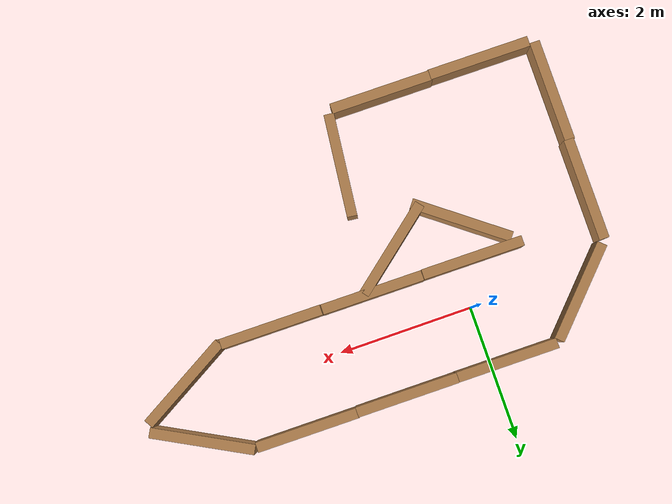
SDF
<?xml version='1.0'?>
<sdf version='1.6'>
  <model name='final_project_zone_1'>
    <link name='Wall_4'>
      <pose frame=''>4.23662 0.529799 -0 0 -0 2.64859</pose>
      <inertial>
        <inertia>
          <ixx>0</ixx>
          <ixy>0</ixy>
          <ixz>0</ixz>
          <iyy>0</iyy>
          <iyz>0</iyz>
          <izz>0</izz>
        </inertia>
        <mass>0</mass>
        <pose frame=''>0 0 0 0 -0 0</pose>
      </inertial>
      <self_collide>0</self_collide>
      <kinematic>0</kinematic>
      <visual name='Wall_4_Visual'>
        <pose frame=''>0 0 0.25 0 -0 0</pose>
        <geometry>
          <box>
            <size>1.51038 0.15 0.5</size>
          </box>
        </geometry>
        <material>
          <script>
            <uri>file://media/materials/scripts/gazebo.material</uri>
            <name>Gazebo/Wood</name>
          </script>
          <ambient>1 1 1 1</ambient>
          <diffuse>1 1 1 1</diffuse>
          <specular>0.2 0.2 0.2 1</specular>
          <emissive>0 0 0 1</emissive>
          <shader type='pixel'>
            <normal_map>__default__</normal_map>
          </shader>
        </material>
        <cast_shadows>1</cast_shadows>
        <transparency>0</transparency>
      </visual>
      <collision name='Wall_4_Collision'>
        <laser_retro>0</laser_retro>
        <max_contacts>10</max_contacts>
        <pose frame=''>0 0 0.25 0 -0 0</pose>
        <geometry>
          <box>
            <size>1.51038 0.15 0.5</size>
          </box>
        </geometry>
        <surface>
          <friction>
            <ode>
              <mu>1</mu>
              <mu2>1</mu2>
              <fdir1>0 0 0</fdir1>
              <slip1>0</slip1>
              <slip2>0</slip2>
            </ode>
            <torsional>
              <coefficient>1</coefficient>
              <patch_radius>0</patch_radius>
              <surface_radius>0</surface_radius>
              <use_patch_radius>1</use_patch_radius>
              <ode>
                <slip>0</slip>
              </ode>
            </torsional>
          </friction>
          <bounce>
            <restitution_coefficient>0</restitution_coefficient>
            <threshold>1e+06</threshold>
          </bounce>
          <contact>
            <collide_without_contact>0</collide_without_contact>
            <collide_without_contact_bitmask>1</collide_without_contact_bitmask>
            <collide_bitmask>1</collide_bitmask>
            <ode>
              <soft_cfm>0</soft_cfm>
              <soft_erp>0.2</soft_erp>
              <kp>1e+13</kp>
              <kd>1</kd>
              <max_vel>0.01</max_vel>
              <min_depth>0</min_depth>
            </ode>
            <bullet>
              <split_impulse>1</split_impulse>
              <split_impulse_penetration_threshold>-0.01</split_impulse_penetration_threshold>
              <soft_cfm>0</soft_cfm>
              <soft_erp>0.2</soft_erp>
              <kp>1e+13</kp>
              <kd>1</kd>
            </bullet>
          </contact>
        </surface>
      </collision>
    </link>
    <link name='Wall_4_clone'>
      <pose frame=''>-0.261199 -1.22161 0 0 -0 2.48633</pose>
      <inertial>
        <inertia>
          <ixx>0</ixx>
          <ixy>0</ixy>
          <ixz>0</ixz>
          <iyy>0</iyy>
          <iyz>0</iyz>
          <izz>0</izz>
        </inertia>
        <mass>0</mass>
        <pose frame=''>0 0 0 0 -0 0</pose>
      </inertial>
      <self_collide>0</self_collide>
      <kinematic>0</kinematic>
      <visual name='Wall_4_Visual'>
        <pose frame=''>0 0 0.25 0 -0 0</pose>
        <geometry>
          <box>
            <size>1.51038 0.15 0.5</size>
          </box>
        </geometry>
        <material>
          <script>
            <uri>file://media/materials/scripts/gazebo.material</uri>
            <name>Gazebo/Wood</name>
          </script>
          <ambient>1 1 1 1</ambient>
          <diffuse>1 1 1 1</diffuse>
          <specular>0.2 0.2 0.2 1</specular>
          <emissive>0 0 0 1</emissive>
          <shader type='pixel'>
            <normal_map>__default__</normal_map>
          </shader>
        </material>
        <cast_shadows>1</cast_shadows>
        <transparency>0</transparency>
      </visual>
      <collision name='Wall_4_Collision'>
        <laser_retro>0</laser_retro>
        <max_contacts>10</max_contacts>
        <pose frame=''>0 0 0.25 0 -0 0</pose>
        <geometry>
          <box>
            <size>1.51038 0.15 0.5</size>
          </box>
        </geometry>
        <surface>
          <friction>
            <ode>
              <mu>1</mu>
              <mu2>1</mu2>
              <fdir1>0 0 0</fdir1>
              <slip1>0</slip1>
              <slip2>0</slip2>
            </ode>
            <torsional>
              <coefficient>1</coefficient>
              <patch_radius>0</patch_radius>
              <surface_radius>0</surface_radius>
              <use_patch_radius>1</use_patch_radius>
              <ode>
                <slip>0</slip>
              </ode>
            </torsional>
          </friction>
          <bounce>
            <restitution_coefficient>0</restitution_coefficient>
            <threshold>1e+06</threshold>
          </bounce>
          <contact>
            <collide_without_contact>0</collide_without_contact>
            <collide_without_contact_bitmask>1</collide_without_contact_bitmask>
            <collide_bitmask>1</collide_bitmask>
            <ode>
              <soft_cfm>0</soft_cfm>
              <soft_erp>0.2</soft_erp>
              <kp>1e+13</kp>
              <kd>1</kd>
              <max_vel>0.01</max_vel>
              <min_depth>0</min_depth>
            </ode>
            <bullet>
              <split_impulse>1</split_impulse>
              <split_impulse_penetration_threshold>-0.01</split_impulse_penetration_threshold>
              <soft_cfm>0</soft_cfm>
              <soft_erp>0.2</soft_erp>
              <kp>1e+13</kp>
              <kd>1</kd>
            </bullet>
          </contact>
        </surface>
      </collision>
    </link>
    <link name='Wall_4_clone_0'>
      <pose frame=''>4.22114 -0.323502 0 0 0 -2.61959</pose>
      <inertial>
        <inertia>
          <ixx>0</ixx>
          <ixy>0</ixy>
          <ixz>0</ixz>
          <iyy>0</iyy>
          <iyz>0</iyz>
          <izz>0</izz>
        </inertia>
        <mass>0</mass>
        <pose frame=''>0 0 0 0 -0 0</pose>
      </inertial>
      <self_collide>0</self_collide>
      <kinematic>0</kinematic>
      <visual name='Wall_4_Visual'>
        <pose frame=''>0 0 0.25 0 -0 0</pose>
        <geometry>
          <box>
            <size>1.51038 0.15 0.5</size>
          </box>
        </geometry>
        <material>
          <script>
            <uri>file://media/materials/scripts/gazebo.material</uri>
            <name>Gazebo/Wood</name>
          </script>
          <ambient>1 1 1 1</ambient>
          <diffuse>1 1 1 1</diffuse>
          <specular>0.2 0.2 0.2 1</specular>
          <emissive>0 0 0 1</emissive>
          <shader type='pixel'>
            <normal_map>__default__</normal_map>
          </shader>
        </material>
        <cast_shadows>1</cast_shadows>
        <transparency>0</transparency>
      </visual>
      <collision name='Wall_4_Collision'>
        <laser_retro>0</laser_retro>
        <max_contacts>10</max_contacts>
        <pose frame=''>0 0 0.25 0 -0 0</pose>
        <geometry>
          <box>
            <size>1.51038 0.15 0.5</size>
          </box>
        </geometry>
        <surface>
          <friction>
            <ode>
              <mu>1</mu>
              <mu2>1</mu2>
              <fdir1>0 0 0</fdir1>
              <slip1>0</slip1>
              <slip2>0</slip2>
            </ode>
            <torsional>
              <coefficient>1</coefficient>
              <patch_radius>0</patch_radius>
              <surface_radius>0</surface_radius>
              <use_patch_radius>1</use_patch_radius>
              <ode>
                <slip>0</slip>
              </ode>
            </torsional>
          </friction>
          <bounce>
            <restitution_coefficient>0</restitution_coefficient>
            <threshold>1e+06</threshold>
          </bounce>
          <contact>
            <collide_without_contact>0</collide_without_contact>
            <collide_without_contact_bitmask>1</collide_without_contact_bitmask>
            <collide_bitmask>1</collide_bitmask>
            <ode>
              <soft_cfm>0</soft_cfm>
              <soft_erp>0.2</soft_erp>
              <kp>1e+13</kp>
              <kd>1</kd>
              <max_vel>0.01</max_vel>
              <min_depth>0</min_depth>
            </ode>
            <bullet>
              <split_impulse>1</split_impulse>
              <split_impulse_penetration_threshold>-0.01</split_impulse_penetration_threshold>
              <soft_cfm>0</soft_cfm>
              <soft_erp>0.2</soft_erp>
              <kp>1e+13</kp>
              <kd>1</kd>
            </bullet>
          </contact>
        </surface>
      </collision>
    </link>
    <link name='Wall_4_clone_0_clone'>
      <pose frame=''>-1.52332 0.300117 0 0 0 -2.33156</pose>
      <inertial>
        <inertia>
          <ixx>0</ixx>
          <ixy>0</ixy>
          <ixz>0</ixz>
          <iyy>0</iyy>
          <iyz>0</iyz>
          <izz>0</izz>
        </inertia>
        <mass>0</mass>
        <pose frame=''>0 0 0 0 -0 0</pose>
      </inertial>
      <self_collide>0</self_collide>
      <kinematic>0</kinematic>
      <visual name='Wall_4_Visual'>
        <pose frame=''>0 0 0.25 0 -0 0</pose>
        <geometry>
          <box>
            <size>1.51038 0.15 0.5</size>
          </box>
        </geometry>
        <material>
          <script>
            <uri>file://media/materials/scripts/gazebo.material</uri>
            <name>Gazebo/Wood</name>
          </script>
          <ambient>1 1 1 1</ambient>
          <diffuse>1 1 1 1</diffuse>
          <specular>0.2 0.2 0.2 1</specular>
          <emissive>0 0 0 1</emissive>
          <shader type='pixel'>
            <normal_map>__default__</normal_map>
          </shader>
        </material>
        <cast_shadows>1</cast_shadows>
        <transparency>0</transparency>
      </visual>
      <collision name='Wall_4_Collision'>
        <laser_retro>0</laser_retro>
        <max_contacts>10</max_contacts>
        <pose frame=''>0 0 0.25 0 -0 0</pose>
        <geometry>
          <box>
            <size>1.51038 0.15 0.5</size>
          </box>
        </geometry>
        <surface>
          <friction>
            <ode>
              <mu>1</mu>
              <mu2>1</mu2>
              <fdir1>0 0 0</fdir1>
              <slip1>0</slip1>
              <slip2>0</slip2>
            </ode>
            <torsional>
              <coefficient>1</coefficient>
              <patch_radius>0</patch_radius>
              <surface_radius>0</surface_radius>
              <use_patch_radius>1</use_patch_radius>
              <ode>
                <slip>0</slip>
              </ode>
            </torsional>
          </friction>
          <bounce>
            <restitution_coefficient>0</restitution_coefficient>
            <threshold>1e+06</threshold>
          </bounce>
          <contact>
            <collide_without_contact>0</collide_without_contact>
            <collide_without_contact_bitmask>1</collide_without_contact_bitmask>
            <collide_bitmask>1</collide_bitmask>
            <ode>
              <soft_cfm>0</soft_cfm>
              <soft_erp>0.2</soft_erp>
              <kp>1e+13</kp>
              <kd>1</kd>
              <max_vel>0.01</max_vel>
              <min_depth>0</min_depth>
            </ode>
            <bullet>
              <split_impulse>1</split_impulse>
              <split_impulse_penetration_threshold>-0.01</split_impulse_penetration_threshold>
              <soft_cfm>0</soft_cfm>
              <soft_erp>0.2</soft_erp>
              <kp>1e+13</kp>
              <kd>1</kd>
            </bullet>
          </contact>
        </surface>
      </collision>
    </link>
    <link name='Wall_4_clone_0_clone_0'>
      <pose frame=''>0.813512 -1.15828 0 0 0 -2.45903</pose>
      <inertial>
        <inertia>
          <ixx>0</ixx>
          <ixy>0</ixy>
          <ixz>0</ixz>
          <iyy>0</iyy>
          <iyz>0</iyz>
          <izz>0</izz>
        </inertia>
        <mass>0</mass>
        <pose frame=''>0 0 0 0 -0 0</pose>
      </inertial>
      <self_collide>0</self_collide>
      <kinematic>0</kinematic>
      <visual name='Wall_4_Visual'>
        <pose frame=''>0 0 0.25 0 -0 0</pose>
        <geometry>
          <box>
            <size>1.51038 0.15 0.5</size>
          </box>
        </geometry>
        <material>
          <script>
            <uri>file://media/materials/scripts/gazebo.material</uri>
            <name>Gazebo/Wood</name>
          </script>
          <ambient>1 1 1 1</ambient>
          <diffuse>1 1 1 1</diffuse>
          <specular>0.2 0.2 0.2 1</specular>
          <emissive>0 0 0 1</emissive>
          <shader type='pixel'>
            <normal_map>__default__</normal_map>
          </shader>
        </material>
        <cast_shadows>1</cast_shadows>
        <transparency>0</transparency>
      </visual>
      <collision name='Wall_4_Collision'>
        <laser_retro>0</laser_retro>
        <max_contacts>10</max_contacts>
        <pose frame=''>0 0 0.25 0 -0 0</pose>
        <geometry>
          <box>
            <size>1.51038 0.15 0.5</size>
          </box>
        </geometry>
        <surface>
          <friction>
            <ode>
              <mu>1</mu>
              <mu2>1</mu2>
              <fdir1>0 0 0</fdir1>
              <slip1>0</slip1>
              <slip2>0</slip2>
            </ode>
            <torsional>
              <coefficient>1</coefficient>
              <patch_radius>0</patch_radius>
              <surface_radius>0</surface_radius>
              <use_patch_radius>1</use_patch_radius>
              <ode>
                <slip>0</slip>
              </ode>
            </torsional>
          </friction>
          <bounce>
            <restitution_coefficient>0</restitution_coefficient>
            <threshold>1e+06</threshold>
          </bounce>
          <contact>
            <collide_without_contact>0</collide_without_contact>
            <collide_without_contact_bitmask>1</collide_without_contact_bitmask>
            <collide_bitmask>1</collide_bitmask>
            <ode>
              <soft_cfm>0</soft_cfm>
              <soft_erp>0.2</soft_erp>
              <kp>1e+13</kp>
              <kd>1</kd>
              <max_vel>0.01</max_vel>
              <min_depth>0</min_depth>
            </ode>
            <bullet>
              <split_impulse>1</split_impulse>
              <split_impulse_penetration_threshold>-0.01</split_impulse_penetration_threshold>
              <soft_cfm>0</soft_cfm>
              <soft_erp>0.2</soft_erp>
              <kp>1e+13</kp>
              <kd>1</kd>
            </bullet>
          </contact>
        </surface>
      </collision>
    </link>
    <link name='Wall_4_clone_1'>
      <pose frame=''>2.7855 0.87105 -0 0 0 -0.004193</pose>
      <inertial>
        <inertia>
          <ixx>0</ixx>
          <ixy>0</ixy>
          <ixz>0</ixz>
          <iyy>0</iyy>
          <iyz>0</iyz>
          <izz>0</izz>
        </inertia>
        <mass>0</mass>
        <pose frame=''>0 0 0 0 -0 0</pose>
      </inertial>
      <self_collide>0</self_collide>
      <kinematic>0</kinematic>
      <visual name='Wall_4_Visual'>
        <pose frame=''>0 0 0.25 0 -0 0</pose>
        <geometry>
          <box>
            <size>1.51038 0.15 0.5</size>
          </box>
        </geometry>
        <material>
          <script>
            <uri>file://media/materials/scripts/gazebo.material</uri>
            <name>Gazebo/Wood</name>
          </script>
          <ambient>1 1 1 1</ambient>
          <diffuse>1 1 1 1</diffuse>
          <specular>0.2 0.2 0.2 1</specular>
          <emissive>0 0 0 1</emissive>
          <shader type='pixel'>
            <normal_map>__default__</normal_map>
          </shader>
        </material>
        <cast_shadows>1</cast_shadows>
        <transparency>0</transparency>
      </visual>
      <collision name='Wall_4_Collision'>
        <laser_retro>0</laser_retro>
        <max_contacts>10</max_contacts>
        <pose frame=''>0 0 0.25 0 -0 0</pose>
        <geometry>
          <box>
            <size>1.51038 0.15 0.5</size>
          </box>
        </geometry>
        <surface>
          <friction>
            <ode>
              <mu>1</mu>
              <mu2>1</mu2>
              <fdir1>0 0 0</fdir1>
              <slip1>0</slip1>
              <slip2>0</slip2>
            </ode>
            <torsional>
              <coefficient>1</coefficient>
              <patch_radius>0</patch_radius>
              <surface_radius>0</surface_radius>
              <use_patch_radius>1</use_patch_radius>
              <ode>
                <slip>0</slip>
              </ode>
            </torsional>
          </friction>
          <bounce>
            <restitution_coefficient>0</restitution_coefficient>
            <threshold>1e+06</threshold>
          </bounce>
          <contact>
            <collide_without_contact>0</collide_without_contact>
            <collide_without_contact_bitmask>1</collide_without_contact_bitmask>
            <collide_bitmask>1</collide_bitmask>
            <ode>
              <soft_cfm>0</soft_cfm>
              <soft_erp>0.2</soft_erp>
              <kp>1e+13</kp>
              <kd>1</kd>
              <max_vel>0.01</max_vel>
              <min_depth>0</min_depth>
            </ode>
            <bullet>
              <split_impulse>1</split_impulse>
              <split_impulse_penetration_threshold>-0.01</split_impulse_penetration_threshold>
              <soft_cfm>0</soft_cfm>
              <soft_erp>0.2</soft_erp>
              <kp>1e+13</kp>
              <kd>1</kd>
            </bullet>
          </contact>
        </surface>
      </collision>
    </link>
    <link name='Wall_4_clone_1_clone'>
      <pose frame=''>2.80341 -0.673816 0 0 0 -0.004193</pose>
      <inertial>
        <inertia>
          <ixx>0</ixx>
          <ixy>0</ixy>
          <ixz>0</ixz>
          <iyy>0</iyy>
          <iyz>0</iyz>
          <izz>0</izz>
        </inertia>
        <mass>0</mass>
        <pose frame=''>0 0 0 0 -0 0</pose>
      </inertial>
      <self_collide>0</self_collide>
      <kinematic>0</kinematic>
      <visual name='Wall_4_Visual'>
        <pose frame=''>0 0 0.25 0 -0 0</pose>
        <geometry>
          <box>
            <size>1.51038 0.15 0.5</size>
          </box>
        </geometry>
        <material>
          <script>
            <uri>file://media/materials/scripts/gazebo.material</uri>
            <name>Gazebo/Wood</name>
          </script>
          <ambient>1 1 1 1</ambient>
          <diffuse>1 1 1 1</diffuse>
          <specular>0.2 0.2 0.2 1</specular>
          <emissive>0 0 0 1</emissive>
          <shader type='pixel'>
            <normal_map>__default__</normal_map>
          </shader>
        </material>
        <cast_shadows>1</cast_shadows>
        <transparency>0</transparency>
      </visual>
      <collision name='Wall_4_Collision'>
        <laser_retro>0</laser_retro>
        <max_contacts>10</max_contacts>
        <pose frame=''>0 0 0.25 0 -0 0</pose>
        <geometry>
          <box>
            <size>1.51038 0.15 0.5</size>
          </box>
        </geometry>
        <surface>
          <friction>
            <ode>
              <mu>1</mu>
              <mu2>1</mu2>
              <fdir1>0 0 0</fdir1>
              <slip1>0</slip1>
              <slip2>0</slip2>
            </ode>
            <torsional>
              <coefficient>1</coefficient>
              <patch_radius>0</patch_radius>
              <surface_radius>0</surface_radius>
              <use_patch_radius>1</use_patch_radius>
              <ode>
                <slip>0</slip>
              </ode>
            </torsional>
          </friction>
          <bounce>
            <restitution_coefficient>0</restitution_coefficient>
            <threshold>1e+06</threshold>
          </bounce>
          <contact>
            <collide_without_contact>0</collide_without_contact>
            <collide_without_contact_bitmask>1</collide_without_contact_bitmask>
            <collide_bitmask>1</collide_bitmask>
            <ode>
              <soft_cfm>0</soft_cfm>
              <soft_erp>0.2</soft_erp>
              <kp>1e+13</kp>
              <kd>1</kd>
              <max_vel>0.01</max_vel>
              <min_depth>0</min_depth>
            </ode>
            <bullet>
              <split_impulse>1</split_impulse>
              <split_impulse_penetration_threshold>-0.01</split_impulse_penetration_threshold>
              <soft_cfm>0</soft_cfm>
              <soft_erp>0.2</soft_erp>
              <kp>1e+13</kp>
              <kd>1</kd>
            </bullet>
          </contact>
        </surface>
      </collision>
    </link>
    <link name='Wall_4_clone_1_clone_0'>
      <pose frame=''>1.28882 0.869383 -0 0 0 -0.004193</pose>
      <inertial>
        <inertia>
          <ixx>0</ixx>
          <ixy>0</ixy>
          <ixz>0</ixz>
          <iyy>0</iyy>
          <iyz>0</iyz>
          <izz>0</izz>
        </inertia>
        <mass>0</mass>
        <pose frame=''>0 0 0 0 -0 0</pose>
      </inertial>
      <self_collide>0</self_collide>
      <kinematic>0</kinematic>
      <visual name='Wall_4_Visual'>
        <pose frame=''>0 0 0.25 0 -0 0</pose>
        <geometry>
          <box>
            <size>1.51038 0.15 0.5</size>
          </box>
        </geometry>
        <material>
          <script>
            <uri>file://media/materials/scripts/gazebo.material</uri>
            <name>Gazebo/Wood</name>
          </script>
          <ambient>1 1 1 1</ambient>
          <diffuse>1 1 1 1</diffuse>
          <specular>0.2 0.2 0.2 1</specular>
          <emissive>0 0 0 1</emissive>
          <shader type='pixel'>
            <normal_map>__default__</normal_map>
          </shader>
        </material>
        <cast_shadows>1</cast_shadows>
        <transparency>0</transparency>
      </visual>
      <collision name='Wall_4_Collision'>
        <laser_retro>0</laser_retro>
        <max_contacts>10</max_contacts>
        <pose frame=''>0 0 0.25 0 -0 0</pose>
        <geometry>
          <box>
            <size>1.51038 0.15 0.5</size>
          </box>
        </geometry>
        <surface>
          <friction>
            <ode>
              <mu>1</mu>
              <mu2>1</mu2>
              <fdir1>0 0 0</fdir1>
              <slip1>0</slip1>
              <slip2>0</slip2>
            </ode>
            <torsional>
              <coefficient>1</coefficient>
              <patch_radius>0</patch_radius>
              <surface_radius>0</surface_radius>
              <use_patch_radius>1</use_patch_radius>
              <ode>
                <slip>0</slip>
              </ode>
            </torsional>
          </friction>
          <bounce>
            <restitution_coefficient>0</restitution_coefficient>
            <threshold>1e+06</threshold>
          </bounce>
          <contact>
            <collide_without_contact>0</collide_without_contact>
            <collide_without_contact_bitmask>1</collide_without_contact_bitmask>
            <collide_bitmask>1</collide_bitmask>
            <ode>
              <soft_cfm>0</soft_cfm>
              <soft_erp>0.2</soft_erp>
              <kp>1e+13</kp>
              <kd>1</kd>
              <max_vel>0.01</max_vel>
              <min_depth>0</min_depth>
            </ode>
            <bullet>
              <split_impulse>1</split_impulse>
              <split_impulse_penetration_threshold>-0.01</split_impulse_penetration_threshold>
              <soft_cfm>0</soft_cfm>
              <soft_erp>0.2</soft_erp>
              <kp>1e+13</kp>
              <kd>1</kd>
            </bullet>
          </contact>
        </surface>
      </collision>
    </link>
    <link name='Wall_4_clone_1_clone_1'>
      <pose frame=''>1.28287 -0.663807 0 0 0 -0.004193</pose>
      <inertial>
        <inertia>
          <ixx>0</ixx>
          <ixy>0</ixy>
          <ixz>0</ixz>
          <iyy>0</iyy>
          <iyz>0</iyz>
          <izz>0</izz>
        </inertia>
        <mass>0</mass>
        <pose frame=''>0 0 0 0 -0 0</pose>
      </inertial>
      <self_collide>0</self_collide>
      <kinematic>0</kinematic>
      <visual name='Wall_4_Visual'>
        <pose frame=''>0 0 0.25 0 -0 0</pose>
        <geometry>
          <box>
            <size>1.51038 0.15 0.5</size>
          </box>
        </geometry>
        <material>
          <script>
            <uri>file://media/materials/scripts/gazebo.material</uri>
            <name>Gazebo/Wood</name>
          </script>
          <ambient>1 1 1 1</ambient>
          <diffuse>1 1 1 1</diffuse>
          <specular>0.2 0.2 0.2 1</specular>
          <emissive>0 0 0 1</emissive>
          <shader type='pixel'>
            <normal_map>__default__</normal_map>
          </shader>
        </material>
        <cast_shadows>1</cast_shadows>
        <transparency>0</transparency>
      </visual>
      <collision name='Wall_4_Collision'>
        <laser_retro>0</laser_retro>
        <max_contacts>10</max_contacts>
        <pose frame=''>0 0 0.25 0 -0 0</pose>
        <geometry>
          <box>
            <size>1.51038 0.15 0.5</size>
          </box>
        </geometry>
        <surface>
          <friction>
            <ode>
              <mu>1</mu>
              <mu2>1</mu2>
              <fdir1>0 0 0</fdir1>
              <slip1>0</slip1>
              <slip2>0</slip2>
            </ode>
            <torsional>
              <coefficient>1</coefficient>
              <patch_radius>0</patch_radius>
              <surface_radius>0</surface_radius>
              <use_patch_radius>1</use_patch_radius>
              <ode>
                <slip>0</slip>
              </ode>
            </torsional>
          </friction>
          <bounce>
            <restitution_coefficient>0</restitution_coefficient>
            <threshold>1e+06</threshold>
          </bounce>
          <contact>
            <collide_without_contact>0</collide_without_contact>
            <collide_without_contact_bitmask>1</collide_without_contact_bitmask>
            <collide_bitmask>1</collide_bitmask>
            <ode>
              <soft_cfm>0</soft_cfm>
              <soft_erp>0.2</soft_erp>
              <kp>1e+13</kp>
              <kd>1</kd>
              <max_vel>0.01</max_vel>
              <min_depth>0</min_depth>
            </ode>
            <bullet>
              <split_impulse>1</split_impulse>
              <split_impulse_penetration_threshold>-0.01</split_impulse_penetration_threshold>
              <soft_cfm>0</soft_cfm>
              <soft_erp>0.2</soft_erp>
              <kp>1e+13</kp>
              <kd>1</kd>
            </bullet>
          </contact>
        </surface>
      </collision>
    </link>
    <link name='Wall_4_clone_1_clone_2'>
      <pose frame=''>-0.209648 0.872142 0 0 0 -0.004193</pose>
      <inertial>
        <inertia>
          <ixx>0</ixx>
          <ixy>0</ixy>
          <ixz>0</ixz>
          <iyy>0</iyy>
          <iyz>0</iyz>
          <izz>0</izz>
        </inertia>
        <mass>0</mass>
        <pose frame=''>0 0 0 0 -0 0</pose>
      </inertial>
      <self_collide>0</self_collide>
      <kinematic>0</kinematic>
      <visual name='Wall_4_Visual'>
        <pose frame=''>0 0 0.25 0 -0 0</pose>
        <geometry>
          <box>
            <size>1.51038 0.15 0.5</size>
          </box>
        </geometry>
        <material>
          <script>
            <uri>file://media/materials/scripts/gazebo.material</uri>
            <name>Gazebo/Wood</name>
          </script>
          <ambient>1 1 1 1</ambient>
          <diffuse>1 1 1 1</diffuse>
          <specular>0.2 0.2 0.2 1</specular>
          <emissive>0 0 0 1</emissive>
          <shader type='pixel'>
            <normal_map>__default__</normal_map>
          </shader>
        </material>
        <cast_shadows>1</cast_shadows>
        <transparency>0</transparency>
      </visual>
      <collision name='Wall_4_Collision'>
        <laser_retro>0</laser_retro>
        <max_contacts>10</max_contacts>
        <pose frame=''>0 0 0.25 0 -0 0</pose>
        <geometry>
          <box>
            <size>1.51038 0.15 0.5</size>
          </box>
        </geometry>
        <surface>
          <friction>
            <ode>
              <mu>1</mu>
              <mu2>1</mu2>
              <fdir1>0 0 0</fdir1>
              <slip1>0</slip1>
              <slip2>0</slip2>
            </ode>
            <torsional>
              <coefficient>1</coefficient>
              <patch_radius>0</patch_radius>
              <surface_radius>0</surface_radius>
              <use_patch_radius>1</use_patch_radius>
              <ode>
                <slip>0</slip>
              </ode>
            </torsional>
          </friction>
          <bounce>
            <restitution_coefficient>0</restitution_coefficient>
            <threshold>1e+06</threshold>
          </bounce>
          <contact>
            <collide_without_contact>0</collide_without_contact>
            <collide_without_contact_bitmask>1</collide_without_contact_bitmask>
            <collide_bitmask>1</collide_bitmask>
            <ode>
              <soft_cfm>0</soft_cfm>
              <soft_erp>0.2</soft_erp>
              <kp>1e+13</kp>
              <kd>1</kd>
              <max_vel>0.01</max_vel>
              <min_depth>0</min_depth>
            </ode>
            <bullet>
              <split_impulse>1</split_impulse>
              <split_impulse_penetration_threshold>-0.01</split_impulse_penetration_threshold>
              <soft_cfm>0</soft_cfm>
              <soft_erp>0.2</soft_erp>
              <kp>1e+13</kp>
              <kd>1</kd>
            </bullet>
          </contact>
        </surface>
      </collision>
    </link>
    <link name='Wall_4_clone_1_clone_3'>
      <pose frame=''>-0.233401 -0.663247 0 0 0 -0.004193</pose>
      <inertial>
        <inertia>
          <ixx>0</ixx>
          <ixy>0</ixy>
          <ixz>0</ixz>
          <iyy>0</iyy>
          <iyz>0</iyz>
          <izz>0</izz>
        </inertia>
        <mass>0</mass>
        <pose frame=''>0 0 0 0 -0 0</pose>
      </inertial>
      <self_collide>0</self_collide>
      <kinematic>0</kinematic>
      <visual name='Wall_4_Visual'>
        <pose frame=''>0 0 0.25 0 -0 0</pose>
        <geometry>
          <box>
            <size>1.51038 0.15 0.5</size>
          </box>
        </geometry>
        <material>
          <script>
            <uri>file://media/materials/scripts/gazebo.material</uri>
            <name>Gazebo/Wood</name>
          </script>
          <ambient>1 1 1 1</ambient>
          <diffuse>1 1 1 1</diffuse>
          <specular>0.2 0.2 0.2 1</specular>
          <emissive>0 0 0 1</emissive>
          <shader type='pixel'>
            <normal_map>__default__</normal_map>
          </shader>
        </material>
        <cast_shadows>1</cast_shadows>
        <transparency>0</transparency>
      </visual>
      <collision name='Wall_4_Collision'>
        <laser_retro>0</laser_retro>
        <max_contacts>10</max_contacts>
        <pose frame=''>0 0 0.25 0 -0 0</pose>
        <geometry>
          <box>
            <size>1.51038 0.15 0.5</size>
          </box>
        </geometry>
        <surface>
          <friction>
            <ode>
              <mu>1</mu>
              <mu2>1</mu2>
              <fdir1>0 0 0</fdir1>
              <slip1>0</slip1>
              <slip2>0</slip2>
            </ode>
            <torsional>
              <coefficient>1</coefficient>
              <patch_radius>0</patch_radius>
              <surface_radius>0</surface_radius>
              <use_patch_radius>1</use_patch_radius>
              <ode>
                <slip>0</slip>
              </ode>
            </torsional>
          </friction>
          <bounce>
            <restitution_coefficient>0</restitution_coefficient>
            <threshold>1e+06</threshold>
          </bounce>
          <contact>
            <collide_without_contact>0</collide_without_contact>
            <collide_without_contact_bitmask>1</collide_without_contact_bitmask>
            <collide_bitmask>1</collide_bitmask>
            <ode>
              <soft_cfm>0</soft_cfm>
              <soft_erp>0.2</soft_erp>
              <kp>1e+13</kp>
              <kd>1</kd>
              <max_vel>0.01</max_vel>
              <min_depth>0</min_depth>
            </ode>
            <bullet>
              <split_impulse>1</split_impulse>
              <split_impulse_penetration_threshold>-0.01</split_impulse_penetration_threshold>
              <soft_cfm>0</soft_cfm>
              <soft_erp>0.2</soft_erp>
              <kp>1e+13</kp>
              <kd>1</kd>
            </bullet>
          </contact>
        </surface>
      </collision>
    </link>
    <link name='Wall_4_clone_1_clone_3_clone'>
      <pose frame=''>-1.27781 -3.34733 0 0 0 -0.004193</pose>
      <inertial>
        <inertia>
          <ixx>0</ixx>
          <ixy>0</ixy>
          <ixz>0</ixz>
          <iyy>0</iyy>
          <iyz>0</iyz>
          <izz>0</izz>
        </inertia>
        <mass>0</mass>
        <pose frame=''>0 0 0 0 -0 0</pose>
      </inertial>
      <self_collide>0</self_collide>
      <kinematic>0</kinematic>
      <visual name='Wall_4_Visual'>
        <pose frame=''>0 0 0.25 0 -0 0</pose>
        <geometry>
          <box>
            <size>1.51038 0.15 0.5</size>
          </box>
        </geometry>
        <material>
          <script>
            <uri>file://media/materials/scripts/gazebo.material</uri>
            <name>Gazebo/Wood</name>
          </script>
          <ambient>1 1 1 1</ambient>
          <diffuse>1 1 1 1</diffuse>
          <specular>0.2 0.2 0.2 1</specular>
          <emissive>0 0 0 1</emissive>
          <shader type='pixel'>
            <normal_map>__default__</normal_map>
          </shader>
        </material>
        <cast_shadows>1</cast_shadows>
        <transparency>0</transparency>
      </visual>
      <collision name='Wall_4_Collision'>
        <laser_retro>0</laser_retro>
        <max_contacts>10</max_contacts>
        <pose frame=''>0 0 0.25 0 -0 0</pose>
        <geometry>
          <box>
            <size>1.51038 0.15 0.5</size>
          </box>
        </geometry>
        <surface>
          <friction>
            <ode>
              <mu>1</mu>
              <mu2>1</mu2>
              <fdir1>0 0 0</fdir1>
              <slip1>0</slip1>
              <slip2>0</slip2>
            </ode>
            <torsional>
              <coefficient>1</coefficient>
              <patch_radius>0</patch_radius>
              <surface_radius>0</surface_radius>
              <use_patch_radius>1</use_patch_radius>
              <ode>
                <slip>0</slip>
              </ode>
            </torsional>
          </friction>
          <bounce>
            <restitution_coefficient>0</restitution_coefficient>
            <threshold>1e+06</threshold>
          </bounce>
          <contact>
            <collide_without_contact>0</collide_without_contact>
            <collide_without_contact_bitmask>1</collide_without_contact_bitmask>
            <collide_bitmask>1</collide_bitmask>
            <ode>
              <soft_cfm>0</soft_cfm>
              <soft_erp>0.2</soft_erp>
              <kp>1e+13</kp>
              <kd>1</kd>
              <max_vel>0.01</max_vel>
              <min_depth>0</min_depth>
            </ode>
            <bullet>
              <split_impulse>1</split_impulse>
              <split_impulse_penetration_threshold>-0.01</split_impulse_penetration_threshold>
              <soft_cfm>0</soft_cfm>
              <soft_erp>0.2</soft_erp>
              <kp>1e+13</kp>
              <kd>1</kd>
            </bullet>
          </contact>
        </surface>
      </collision>
    </link>
    <link name='Wall_4_clone_1_clone_3_clone_0'>
      <pose frame=''>0.218428 -3.34323 0 0 0 -0.004193</pose>
      <inertial>
        <inertia>
          <ixx>0</ixx>
          <ixy>0</ixy>
          <ixz>0</ixz>
          <iyy>0</iyy>
          <iyz>0</iyz>
          <izz>0</izz>
        </inertia>
        <mass>0</mass>
        <pose frame=''>0 0 0 0 -0 0</pose>
      </inertial>
      <self_collide>0</self_collide>
      <kinematic>0</kinematic>
      <visual name='Wall_4_Visual'>
        <pose frame=''>0 0 0.25 0 -0 0</pose>
        <geometry>
          <box>
            <size>1.51038 0.15 0.5</size>
          </box>
        </geometry>
        <material>
          <script>
            <uri>file://media/materials/scripts/gazebo.material</uri>
            <name>Gazebo/Wood</name>
          </script>
          <ambient>1 1 1 1</ambient>
          <diffuse>1 1 1 1</diffuse>
          <specular>0.2 0.2 0.2 1</specular>
          <emissive>0 0 0 1</emissive>
          <shader type='pixel'>
            <normal_map>__default__</normal_map>
          </shader>
        </material>
        <cast_shadows>1</cast_shadows>
        <transparency>0</transparency>
      </visual>
      <collision name='Wall_4_Collision'>
        <laser_retro>0</laser_retro>
        <max_contacts>10</max_contacts>
        <pose frame=''>0 0 0.25 0 -0 0</pose>
        <geometry>
          <box>
            <size>1.51038 0.15 0.5</size>
          </box>
        </geometry>
        <surface>
          <friction>
            <ode>
              <mu>1</mu>
              <mu2>1</mu2>
              <fdir1>0 0 0</fdir1>
              <slip1>0</slip1>
              <slip2>0</slip2>
            </ode>
            <torsional>
              <coefficient>1</coefficient>
              <patch_radius>0</patch_radius>
              <surface_radius>0</surface_radius>
              <use_patch_radius>1</use_patch_radius>
              <ode>
                <slip>0</slip>
              </ode>
            </torsional>
          </friction>
          <bounce>
            <restitution_coefficient>0</restitution_coefficient>
            <threshold>1e+06</threshold>
          </bounce>
          <contact>
            <collide_without_contact>0</collide_without_contact>
            <collide_without_contact_bitmask>1</collide_without_contact_bitmask>
            <collide_bitmask>1</collide_bitmask>
            <ode>
              <soft_cfm>0</soft_cfm>
              <soft_erp>0.2</soft_erp>
              <kp>1e+13</kp>
              <kd>1</kd>
              <max_vel>0.01</max_vel>
              <min_depth>0</min_depth>
            </ode>
            <bullet>
              <split_impulse>1</split_impulse>
              <split_impulse_penetration_threshold>-0.01</split_impulse_penetration_threshold>
              <soft_cfm>0</soft_cfm>
              <soft_erp>0.2</soft_erp>
              <kp>1e+13</kp>
              <kd>1</kd>
            </bullet>
          </contact>
        </surface>
      </collision>
    </link>
    <link name='Wall_4_clone_2_clone'>
      <pose frame=''>-2.09318 -1.05789 0 0 -0 1.5708</pose>
      <inertial>
        <inertia>
          <ixx>0</ixx>
          <ixy>0</ixy>
          <ixz>0</ixz>
          <iyy>0</iyy>
          <iyz>0</iyz>
          <izz>0</izz>
        </inertia>
        <mass>0</mass>
        <pose frame=''>0 0 0 0 -0 0</pose>
      </inertial>
      <self_collide>0</self_collide>
      <kinematic>0</kinematic>
      <visual name='Wall_4_Visual'>
        <pose frame=''>0 0 0.25 0 -0 0</pose>
        <geometry>
          <box>
            <size>1.51038 0.15 0.5</size>
          </box>
        </geometry>
        <material>
          <script>
            <uri>file://media/materials/scripts/gazebo.material</uri>
            <name>Gazebo/Wood</name>
          </script>
          <ambient>1 1 1 1</ambient>
          <diffuse>1 1 1 1</diffuse>
          <specular>0.2 0.2 0.2 1</specular>
          <emissive>0 0 0 1</emissive>
          <shader type='pixel'>
            <normal_map>__default__</normal_map>
          </shader>
        </material>
        <cast_shadows>1</cast_shadows>
        <transparency>0</transparency>
      </visual>
      <collision name='Wall_4_Collision'>
        <laser_retro>0</laser_retro>
        <max_contacts>10</max_contacts>
        <pose frame=''>0 0 0.25 0 -0 0</pose>
        <geometry>
          <box>
            <size>1.51038 0.15 0.5</size>
          </box>
        </geometry>
        <surface>
          <friction>
            <ode>
              <mu>1</mu>
              <mu2>1</mu2>
              <fdir1>0 0 0</fdir1>
              <slip1>0</slip1>
              <slip2>0</slip2>
            </ode>
            <torsional>
              <coefficient>1</coefficient>
              <patch_radius>0</patch_radius>
              <surface_radius>0</surface_radius>
              <use_patch_radius>1</use_patch_radius>
              <ode>
                <slip>0</slip>
              </ode>
            </torsional>
          </friction>
          <bounce>
            <restitution_coefficient>0</restitution_coefficient>
            <threshold>1e+06</threshold>
          </bounce>
          <contact>
            <collide_without_contact>0</collide_without_contact>
            <collide_without_contact_bitmask>1</collide_without_contact_bitmask>
            <collide_bitmask>1</collide_bitmask>
            <ode>
              <soft_cfm>0</soft_cfm>
              <soft_erp>0.2</soft_erp>
              <kp>1e+13</kp>
              <kd>1</kd>
              <max_vel>0.01</max_vel>
              <min_depth>0</min_depth>
            </ode>
            <bullet>
              <split_impulse>1</split_impulse>
              <split_impulse_penetration_threshold>-0.01</split_impulse_penetration_threshold>
              <soft_cfm>0</soft_cfm>
              <soft_erp>0.2</soft_erp>
              <kp>1e+13</kp>
              <kd>1</kd>
            </bullet>
          </contact>
        </surface>
      </collision>
    </link>
    <link name='Wall_4_clone_2_clone_0'>
      <pose frame=''>-2.10876 -2.55049 0 0 -0 1.5708</pose>
      <inertial>
        <inertia>
          <ixx>0</ixx>
          <ixy>0</ixy>
          <ixz>0</ixz>
          <iyy>0</iyy>
          <iyz>0</iyz>
          <izz>0</izz>
        </inertia>
        <mass>0</mass>
        <pose frame=''>0 0 0 0 -0 0</pose>
      </inertial>
      <self_collide>0</self_collide>
      <kinematic>0</kinematic>
      <gravity>1</gravity>
      <visual name='Wall_4_Visual'>
        <pose frame=''>0 0 0.25 0 -0 0</pose>
        <geometry>
          <box>
            <size>1.51038 0.15 0.5</size>
          </box>
        </geometry>
        <material>
          <script>
            <uri>file://media/materials/scripts/gazebo.material</uri>
            <name>Gazebo/Wood</name>
          </script>
          <ambient>1 1 1 1</ambient>
          <diffuse>1 1 1 1</diffuse>
          <specular>0.2 0.2 0.2 1</specular>
          <emissive>0 0 0 1</emissive>
          <shader type='pixel'>
            <normal_map>__default__</normal_map>
          </shader>
        </material>
        <cast_shadows>1</cast_shadows>
        <transparency>0</transparency>
      </visual>
      <collision name='Wall_4_Collision'>
        <laser_retro>0</laser_retro>
        <max_contacts>10</max_contacts>
        <pose frame=''>0 0 0.25 0 -0 0</pose>
        <geometry>
          <box>
            <size>1.51038 0.15 0.5</size>
          </box>
        </geometry>
        <surface>
          <friction>
            <ode>
              <mu>1</mu>
              <mu2>1</mu2>
              <fdir1>0 0 0</fdir1>
              <slip1>0</slip1>
              <slip2>0</slip2>
            </ode>
            <torsional>
              <coefficient>1</coefficient>
              <patch_radius>0</patch_radius>
              <surface_radius>0</surface_radius>
              <use_patch_radius>1</use_patch_radius>
              <ode>
                <slip>0</slip>
              </ode>
            </torsional>
          </friction>
          <bounce>
            <restitution_coefficient>0</restitution_coefficient>
            <threshold>1e+06</threshold>
          </bounce>
          <contact>
            <collide_without_contact>0</collide_without_contact>
            <collide_without_contact_bitmask>1</collide_without_contact_bitmask>
            <collide_bitmask>1</collide_bitmask>
            <ode>
              <soft_cfm>0</soft_cfm>
              <soft_erp>0.2</soft_erp>
              <kp>1e+13</kp>
              <kd>1</kd>
              <max_vel>0.01</max_vel>
              <min_depth>0</min_depth>
            </ode>
            <bullet>
              <split_impulse>1</split_impulse>
              <split_impulse_penetration_threshold>-0.01</split_impulse_penetration_threshold>
              <soft_cfm>0</soft_cfm>
              <soft_erp>0.2</soft_erp>
              <kp>1e+13</kp>
              <kd>1</kd>
            </bullet>
          </contact>
        </surface>
      </collision>
    </link>
    <link name='Wall_4_clone_2_clone_2'>
      <pose frame=''>1.11405 -2.53668 0 0 -0 1.46273</pose>
      <inertial>
        <inertia>
          <ixx>0</ixx>
          <ixy>0</ixy>
          <ixz>0</ixz>
          <iyy>0</iyy>
          <iyz>0</iyz>
          <izz>0</izz>
        </inertia>
        <mass>0</mass>
        <pose frame=''>0 0 0 0 -0 0</pose>
      </inertial>
      <self_collide>0</self_collide>
      <kinematic>0</kinematic>
      <visual name='Wall_4_Visual'>
        <pose frame=''>0 0 0.25 0 -0 0</pose>
        <geometry>
          <box>
            <size>1.51038 0.15 0.5</size>
          </box>
        </geometry>
        <material>
          <script>
            <uri>file://media/materials/scripts/gazebo.material</uri>
            <name>Gazebo/Wood</name>
          </script>
          <ambient>1 1 1 1</ambient>
          <diffuse>1 1 1 1</diffuse>
          <specular>0.2 0.2 0.2 1</specular>
          <emissive>0 0 0 1</emissive>
          <shader type='pixel'>
            <normal_map>__default__</normal_map>
          </shader>
        </material>
        <cast_shadows>1</cast_shadows>
        <transparency>0</transparency>
      </visual>
      <collision name='Wall_4_Collision'>
        <laser_retro>0</laser_retro>
        <max_contacts>10</max_contacts>
        <pose frame=''>0 0 0.25 0 -0 0</pose>
        <geometry>
          <box>
            <size>1.51038 0.15 0.5</size>
          </box>
        </geometry>
        <surface>
          <friction>
            <ode>
              <mu>1</mu>
              <mu2>1</mu2>
              <fdir1>0 0 0</fdir1>
              <slip1>0</slip1>
              <slip2>0</slip2>
            </ode>
            <torsional>
              <coefficient>1</coefficient>
              <patch_radius>0</patch_radius>
              <surface_radius>0</surface_radius>
              <use_patch_radius>1</use_patch_radius>
              <ode>
                <slip>0</slip>
              </ode>
            </torsional>
          </friction>
          <bounce>
            <restitution_coefficient>0</restitution_coefficient>
            <threshold>1e+06</threshold>
          </bounce>
          <contact>
            <collide_without_contact>0</collide_without_contact>
            <collide_without_contact_bitmask>1</collide_without_contact_bitmask>
            <collide_bitmask>1</collide_bitmask>
            <ode>
              <soft_cfm>0</soft_cfm>
              <soft_erp>0.2</soft_erp>
              <kp>1e+13</kp>
              <kd>1</kd>
              <max_vel>0.01</max_vel>
              <min_depth>0</min_depth>
            </ode>
            <bullet>
              <split_impulse>1</split_impulse>
              <split_impulse_penetration_threshold>-0.01</split_impulse_penetration_threshold>
              <soft_cfm>0</soft_cfm>
              <soft_erp>0.2</soft_erp>
              <kp>1e+13</kp>
              <kd>1</kd>
            </bullet>
          </contact>
        </surface>
      </collision>
    </link>
    <static>1</static>
    <allow_auto_disable>1</allow_auto_disable>
  </model>
</sdf>
